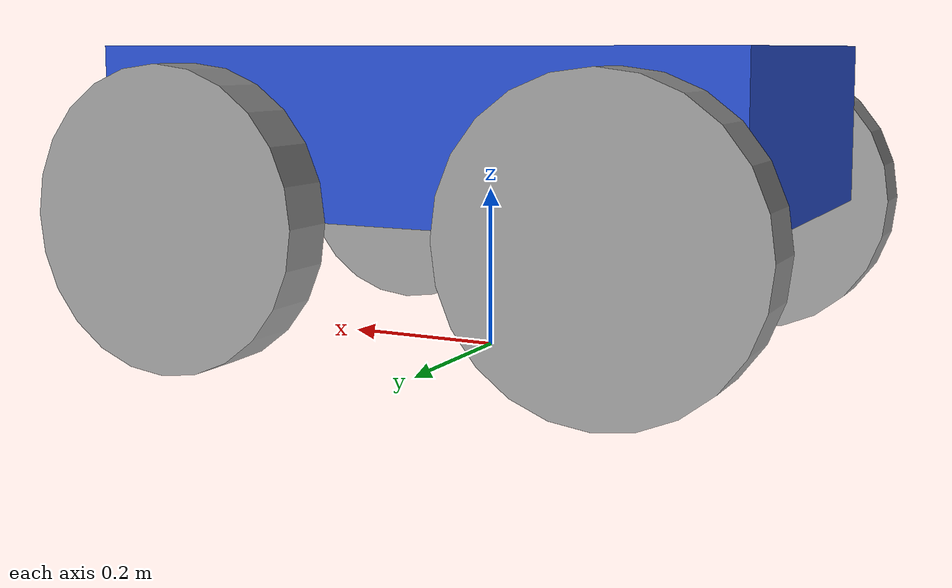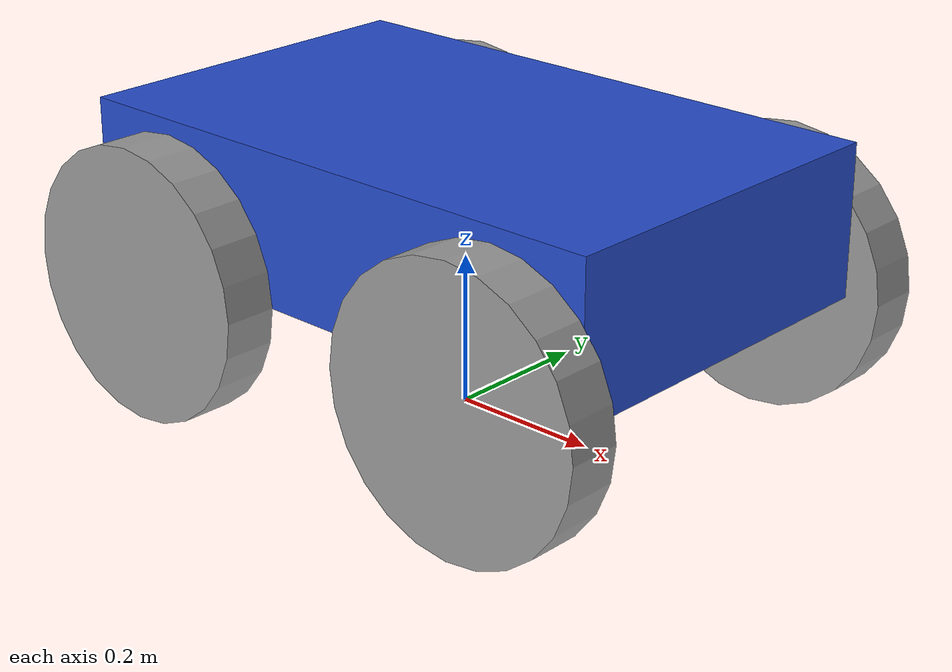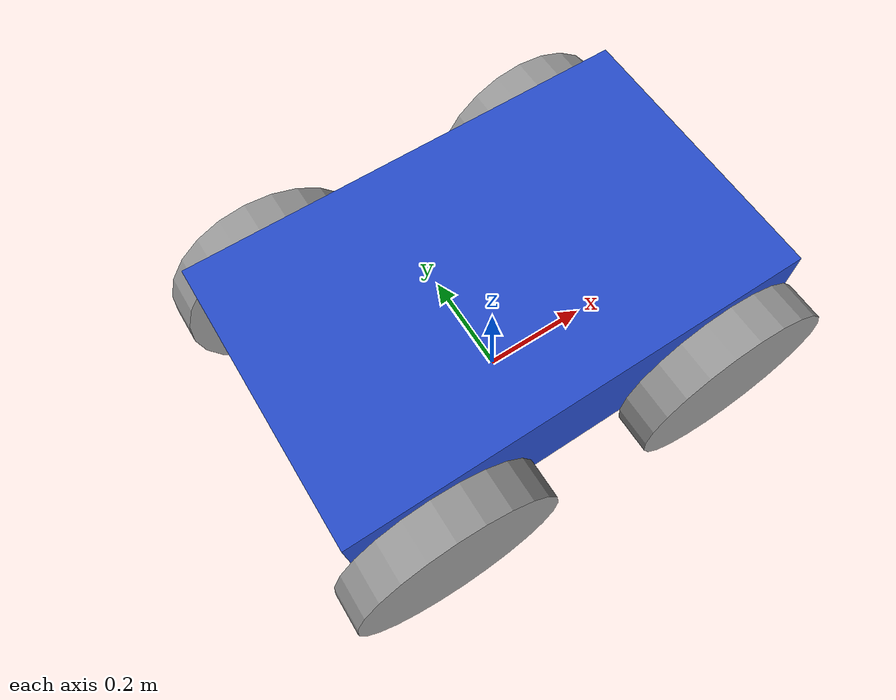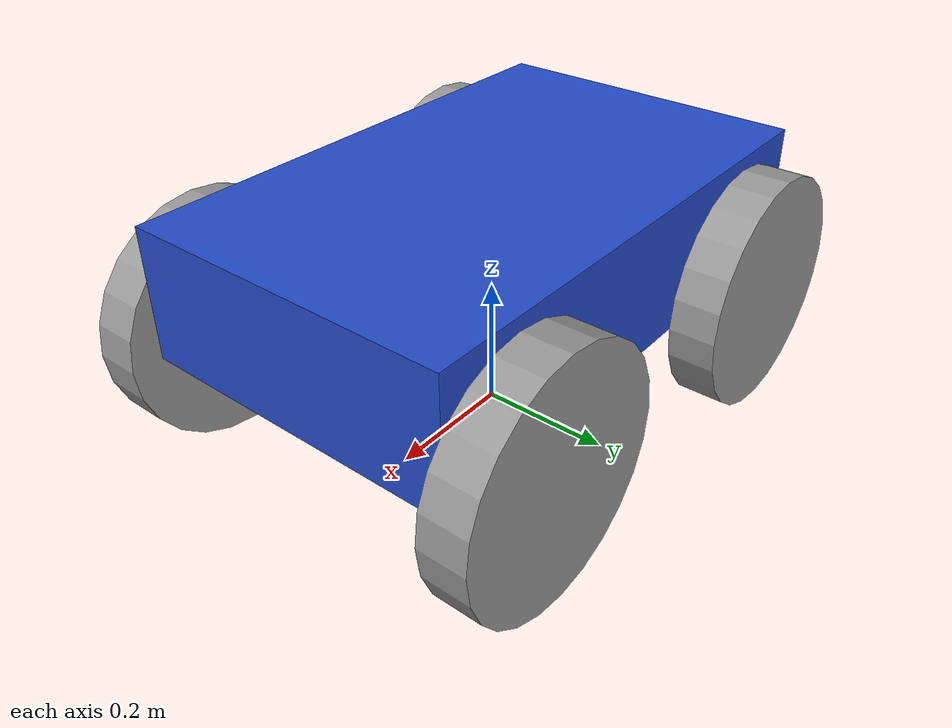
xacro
<?xml version="1.0"?>
<robot xmlns:xacro="http://www.ros.org/wiki/xacro">

    <xacro:property name="base_length" value="0.8"/>
    <xacro:property name="base_width" value="0.5"/>
    <xacro:property name="base_height" value="0.2"/>
    <xacro:property name="wheel_radius" value="0.18"/>
    <xacro:property name="wheel_length" value="0.07"/>

    <link name="base_footprint"/>

    <link name="base_link">
        <visual>
            <geometry>
                <box size="${base_length} ${base_width} ${base_height}"/>
            </geometry>
            <origin xyz="0 0 ${base_height / 2.0}" rpy="0 0 0"/>
            <material name="blue"/>
        </visual>
        <collision>
            <geometry>
                <box size="${base_length} ${base_width} ${base_height}"/>
            </geometry>
            <origin xyz="0 0 ${base_height / 2.0}" rpy="0 0 0"/>
        </collision>
        <xacro:box_inertia m="5.0" l="${base_length}" w="${base_width}" h="${base_height}" xyz="0 0 ${base_height / 2.0}" rpy="0 0 0"/>
    </link>

    <xacro:macro name="wheel_link" params="prefix">
        <link name="${prefix}_wheel_link">
            <visual>
                <geometry>
                    <cylinder radius="${wheel_radius}" length="${wheel_length}"/>
                </geometry>
                <origin xyz="0 0 0" rpy="${pi /2.0} 0 0"/>
                <material name="grey"/>
            </visual>
            <collision>
                <geometry>
                    <cylinder radius="${wheel_radius}" length="${wheel_length}"/>
                </geometry>
                <origin xyz="0 0 0" rpy="${pi /2.0} 0 0"/>
            </collision>
            <xacro:wheel_inertia m="1.0" r="${wheel_radius}" h="${wheel_length}" xyz="0 0 0" rpy="${pi /2.0} 0 0"/>
        </link>
    </xacro:macro>

    <xacro:wheel_link prefix="right_front"/>
    <xacro:wheel_link prefix="right_back"/>
    <xacro:wheel_link prefix="left_front"/>
    <xacro:wheel_link prefix="left_back"/>

    <joint name="base_joint" type="fixed">
        <parent link="base_footprint"/>
        <child link="base_link"/>
        <origin xyz="0 0 ${wheel_radius}" rpy="0 0 0"/>
    </joint>

    <joint name="base_right_back_wheel_joint" type="continuous">
        <parent link="base_link"/>
        <child link="right_back_wheel_link"/>
        <origin xyz="-${base_length / 3.0} -${(base_width / 2.0) + (wheel_length / 2.0)} 0" rpy="0 0 0"/>
        <axis xyz="0 1 0"/>
    </joint>

    <joint name="base_right_front_wheel_joint" type="continuous">
        <parent link="base_link"/>
        <child link="right_front_wheel_link"/>
        <origin xyz="${base_length / 3.0} -${(base_width / 2.0) + (wheel_length / 2.0)} 0" rpy="0 0 0"/>
        <axis xyz="0 1 0"/>
    </joint>

    <joint name="base_left_front_wheel_joint" type="continuous">
        <parent link="base_link"/>
        <child link="left_front_wheel_link"/>
        <origin xyz="${base_length / 3.0} ${(base_width / 2.0) + (wheel_length / 2.0)} 0" rpy="0 0 0"/>
        <axis xyz="0 1 0"/>
    </joint>

    <joint name="base_left_back_wheel_joint" type="continuous">
        <parent link="base_link"/>
        <child link="left_back_wheel_link"/>
        <origin xyz="-${base_length / 3.0} ${(base_width / 2.0) + (wheel_length / 2.0)} 0" rpy="0 0 0"/>
        <axis xyz="0 1 0"/>
    </joint>
</robot>
